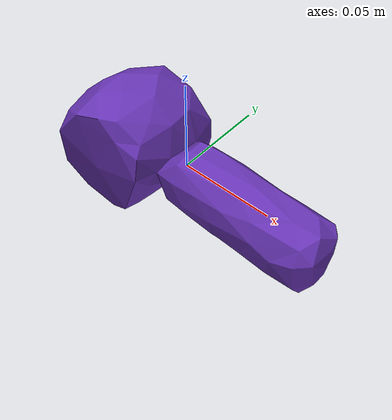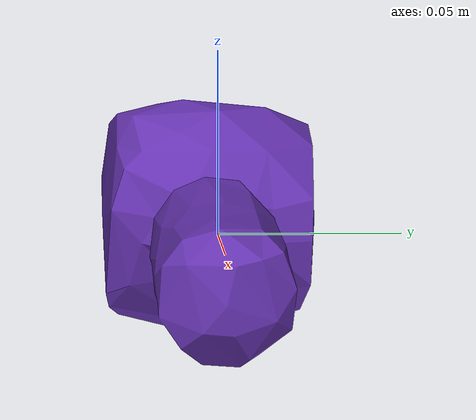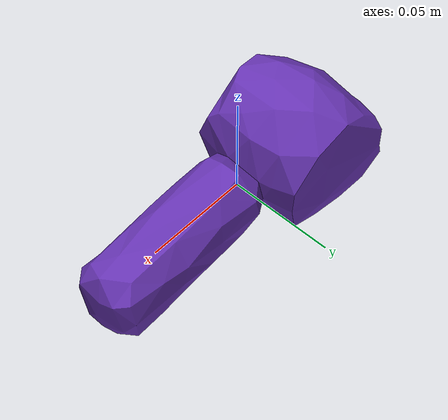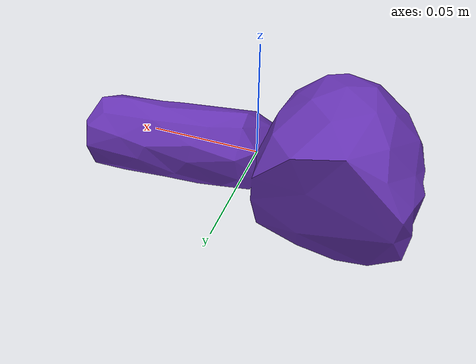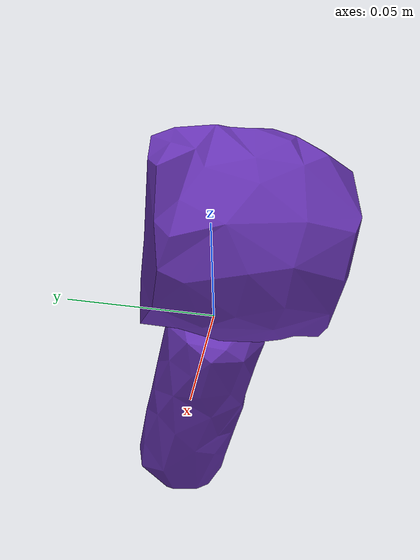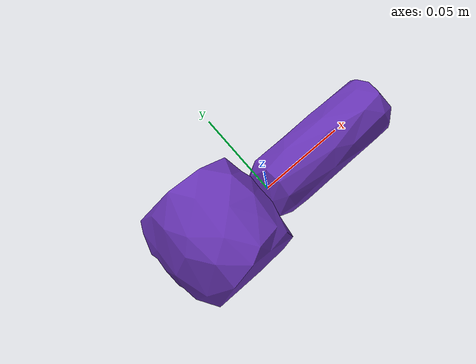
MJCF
<mujoco model="top_watertight_tiny">

  <asset>
    <mesh file="top_watertight_tiny.obj"/>
    <mesh file="top_watertight_tiny_collision_0.obj"/>
    <mesh file="top_watertight_tiny_collision_1.obj"/>
  </asset>
  <worldbody>
    <body name="top_watertight_tiny">
      <freejoint/>
      <geom solimp="0.90 0.95 0.001" solref="0.02 1.0" density="100" friction="0.95 0.4 0.3" rgba="0.4 0.2 0.7 1" mesh="top_watertight_tiny" group="2" type="mesh" contype="0" conaffinity="0"/>
      <geom solimp="0.90 0.95 0.001" solref="0.02 1.0" density="100" friction="0.95 0.4 0.3" mesh="top_watertight_tiny_collision_0" rgba="0.6968429178028248 0.3176609259002059 0.5494494160329726 1" group="3" type="mesh"/>
      <geom solimp="0.90 0.95 0.001" solref="0.02 1.0" density="100" friction="0.95 0.4 0.3" mesh="top_watertight_tiny_collision_1" rgba="0.5428822805095345 0.36821703239776693 0.8791396863411797 1" group="3" type="mesh"/>
    </body>
  </worldbody>
</mujoco>
